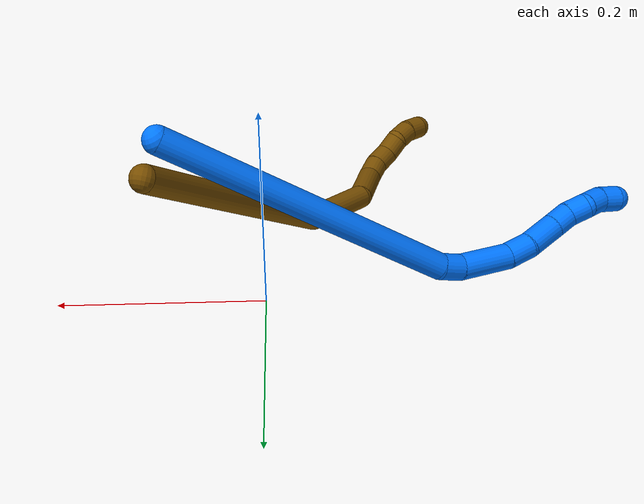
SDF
<sdf version="1.7">
 <world name="default">
  <model name="12">
   <static>0</static>
   <link name="12">
    <collision name="collision-cylinder-e_1_1_4">
     <pose>-0.071664 -0.110942 0.015609 1.43102 -0.569071 -0.497861</pose>
     <geometry><cylinder><radius>0.0125</radius><length>0.26599</length></cylinder></geometry>
     <surface>
      <friction><ode><mu>1.16</mu><mu2>1.16</mu2><slip1>0</slip1><slip2>0</slip2></ode></friction>
      <contact><ode><kp>1e+06</kp><kd>1</kd><max_vel>0</max_vel><min_depth>0.001</min_depth></ode></contact>
     </surface>
    </collision>
    <visual name="visual-cylinder-e_1_1_4">
     <pose>-0.071664 -0.110942 0.015609 1.43102 -0.569071 -0.497861</pose>
     <geometry><cylinder><radius>0.0125</radius><length>0.26599</length></cylinder></geometry>
     <material><ambient>0.466667 0.301961 0 1</ambient></material>
    </visual>
    <collision name="collision-cylinder-e_2_4_5">
     <pose>-0.166597 -0.24474 0.051513 0.844661 -0.650677 -0.300878</pose>
     <geometry><cylinder><radius>0.0125</radius><length>0.076828</length></cylinder></geometry>
     <surface>
      <friction><ode><mu>1.16</mu><mu2>1.16</mu2><slip1>0</slip1><slip2>0</slip2></ode></friction>
      <contact><ode><kp>1e+06</kp><kd>1</kd><max_vel>0</max_vel><min_depth>0.001</min_depth></ode></contact>
     </surface>
    </collision>
    <visual name="visual-cylinder-e_2_4_5">
     <pose>-0.166597 -0.24474 0.051513 0.844661 -0.650677 -0.300878</pose>
     <geometry><cylinder><radius>0.0125</radius><length>0.076828</length></cylinder></geometry>
     <material><ambient>0.466667 0.301961 0 1</ambient></material>
    </visual>
    <collision name="collision-cylinder-e_3_5_6">
     <pose>-0.193834 -0.287963 0.087902 0.902067 -0.151697 -0.07358</pose>
     <geometry><cylinder><radius>0.0125</radius><length>0.052524</length></cylinder></geometry>
     <surface>
      <friction><ode><mu>1.16</mu><mu2>1.16</mu2><slip1>0</slip1><slip2>0</slip2></ode></friction>
      <contact><ode><kp>1e+06</kp><kd>1</kd><max_vel>0</max_vel><min_depth>0.001</min_depth></ode></contact>
     </surface>
    </collision>
    <visual name="visual-cylinder-e_3_5_6">
     <pose>-0.193834 -0.287963 0.087902 0.902067 -0.151697 -0.07358</pose>
     <geometry><cylinder><radius>0.0125</radius><length>0.052524</length></cylinder></geometry>
     <material><ambient>0.466667 0.301961 0 1</ambient></material>
    </visual>
    <collision name="collision-cylinder-e_4_6_7">
     <pose>-0.200478 -0.313514 0.112875 0.528325 -0.254673 -0.069232</pose>
     <geometry><cylinder><radius>0.0125</radius><length>0.021244</length></cylinder></geometry>
     <surface>
      <friction><ode><mu>1.16</mu><mu2>1.16</mu2><slip1>0</slip1><slip2>0</slip2></ode></friction>
      <contact><ode><kp>1e+06</kp><kd>1</kd><max_vel>0</max_vel><min_depth>0.001</min_depth></ode></contact>
     </surface>
    </collision>
    <visual name="visual-cylinder-e_4_6_7">
     <pose>-0.200478 -0.313514 0.112875 0.528325 -0.254673 -0.069232</pose>
     <geometry><cylinder><radius>0.0125</radius><length>0.021244</length></cylinder></geometry>
     <material><ambient>0.466667 0.301961 0 1</ambient></material>
    </visual>
    <collision name="collision-cylinder-e_5_7_8">
     <pose>-0.208412 -0.323421 0.130488 0.495854 -0.486913 -0.125584</pose>
     <geometry><cylinder><radius>0.0125</radius><length>0.022476</length></cylinder></geometry>
     <surface>
      <friction><ode><mu>1.16</mu><mu2>1.16</mu2><slip1>0</slip1><slip2>0</slip2></ode></friction>
      <contact><ode><kp>1e+06</kp><kd>1</kd><max_vel>0</max_vel><min_depth>0.001</min_depth></ode></contact>
     </surface>
    </collision>
    <visual name="visual-cylinder-e_5_7_8">
     <pose>-0.208412 -0.323421 0.130488 0.495854 -0.486913 -0.125584</pose>
     <geometry><cylinder><radius>0.0125</radius><length>0.022476</length></cylinder></geometry>
     <material><ambient>0.466667 0.301961 0 1</ambient></material>
    </visual>
    <collision name="collision-cylinder-e_6_8_9">
     <pose>-0.217978 -0.328312 0.148362 0.01821 -0.440469 -0.004077</pose>
     <geometry><cylinder><radius>0.0125</radius><length>0.020207</length></cylinder></geometry>
     <surface>
      <friction><ode><mu>1.16</mu><mu2>1.16</mu2><slip1>0</slip1><slip2>0</slip2></ode></friction>
      <contact><ode><kp>1e+06</kp><kd>1</kd><max_vel>0</max_vel><min_depth>0.001</min_depth></ode></contact>
     </surface>
    </collision>
    <visual name="visual-cylinder-e_6_8_9">
     <pose>-0.217978 -0.328312 0.148362 0.01821 -0.440469 -0.004077</pose>
     <geometry><cylinder><radius>0.0125</radius><length>0.020207</length></cylinder></geometry>
     <material><ambient>0.466667 0.301961 0 1</ambient></material>
    </visual>
    <collision name="collision-cylinder-e_7_9_10">
     <pose>-0.227401 -0.333256 0.165055 0.563834 -0.519707 -0.153702</pose>
     <geometry><cylinder><radius>0.0125</radius><length>0.020599</length></cylinder></geometry>
     <surface>
      <friction><ode><mu>1.16</mu><mu2>1.16</mu2><slip1>0</slip1><slip2>0</slip2></ode></friction>
      <contact><ode><kp>1e+06</kp><kd>1</kd><max_vel>0</max_vel><min_depth>0.001</min_depth></ode></contact>
     </surface>
    </collision>
    <visual name="visual-cylinder-e_7_9_10">
     <pose>-0.227401 -0.333256 0.165055 0.563834 -0.519707 -0.153702</pose>
     <geometry><cylinder><radius>0.0125</radius><length>0.020599</length></cylinder></geometry>
     <material><ambient>0.466667 0.301961 0 1</ambient></material>
    </visual>
    <collision name="collision-cylinder-e_8_10_2">
     <pose>-0.239083 -0.343586 0.177845 0.814852 -0.710638 -0.31759</pose>
     <geometry><cylinder><radius>0.0125</radius><length>0.020134</length></cylinder></geometry>
     <surface>
      <friction><ode><mu>1.16</mu><mu2>1.16</mu2><slip1>0</slip1><slip2>0</slip2></ode></friction>
      <contact><ode><kp>1e+06</kp><kd>1</kd><max_vel>0</max_vel><min_depth>0.001</min_depth></ode></contact>
     </surface>
    </collision>
    <visual name="visual-cylinder-e_8_10_2">
     <pose>-0.239083 -0.343586 0.177845 0.814852 -0.710638 -0.31759</pose>
     <geometry><cylinder><radius>0.0125</radius><length>0.020134</length></cylinder></geometry>
     <material><ambient>0.466667 0.301961 0 1</ambient></material>
    </visual>
    <collision name="collision-sphere-2">
     <pose>-0.24565 -0.349138 0.183079 0 -0 0</pose>
     <geometry><sphere><radius>0.0125</radius></sphere></geometry>
     <surface>
      <friction><ode><mu>1.16</mu><mu2>1.16</mu2><slip1>0</slip1><slip2>0</slip2></ode></friction>
      <contact><ode><kp>1e+06</kp><kd>1</kd><max_vel>0</max_vel><min_depth>0.001</min_depth></ode></contact>
     </surface>
    </collision>
    <visual name="visual-sphere-2">
     <pose>-0.24565 -0.349138 0.183079 0 -0 0</pose>
     <geometry><sphere><radius>0.0125</radius></sphere></geometry>
     <material><ambient>0.466667 0.301961 0 1</ambient></material>
    </visual>
    <collision name="collision-sphere-10">
     <pose>-0.232516 -0.338034 0.172611 0 -0 0</pose>
     <geometry><sphere><radius>0.0125</radius></sphere></geometry>
     <surface>
      <friction><ode><mu>1.16</mu><mu2>1.16</mu2><slip1>0</slip1><slip2>0</slip2></ode></friction>
      <contact><ode><kp>1e+06</kp><kd>1</kd><max_vel>0</max_vel><min_depth>0.001</min_depth></ode></contact>
     </surface>
    </collision>
    <visual name="visual-sphere-10">
     <pose>-0.232516 -0.338034 0.172611 0 -0 0</pose>
     <geometry><sphere><radius>0.0125</radius></sphere></geometry>
     <material><ambient>0.466667 0.301961 0 1</ambient></material>
    </visual>
    <collision name="collision-sphere-9">
     <pose>-0.222286 -0.328479 0.157499 0 -0 0</pose>
     <geometry><sphere><radius>0.0125</radius></sphere></geometry>
     <surface>
      <friction><ode><mu>1.16</mu><mu2>1.16</mu2><slip1>0</slip1><slip2>0</slip2></ode></friction>
      <contact><ode><kp>1e+06</kp><kd>1</kd><max_vel>0</max_vel><min_depth>0.001</min_depth></ode></contact>
     </surface>
    </collision>
    <visual name="visual-sphere-9">
     <pose>-0.222286 -0.328479 0.157499 0 -0 0</pose>
     <geometry><sphere><radius>0.0125</radius></sphere></geometry>
     <material><ambient>0.466667 0.301961 0 1</ambient></material>
    </visual>
    <collision name="collision-sphere-4">
     <pose>-0.143329 -0.221885 0.031218 0 -0 0</pose>
     <geometry><sphere><radius>0.0125</radius></sphere></geometry>
     <surface>
      <friction><ode><mu>1.16</mu><mu2>1.16</mu2><slip1>0</slip1><slip2>0</slip2></ode></friction>
      <contact><ode><kp>1e+06</kp><kd>1</kd><max_vel>0</max_vel><min_depth>0.001</min_depth></ode></contact>
     </surface>
    </collision>
    <visual name="visual-sphere-4">
     <pose>-0.143329 -0.221885 0.031218 0 -0 0</pose>
     <geometry><sphere><radius>0.0125</radius></sphere></geometry>
     <material><ambient>0.466667 0.301961 0 1</ambient></material>
    </visual>
    <collision name="collision-sphere-1">
     <geometry><sphere><radius>0.0125</radius></sphere></geometry>
     <surface>
      <friction><ode><mu>1.16</mu><mu2>1.16</mu2><slip1>0</slip1><slip2>0</slip2></ode></friction>
      <contact><ode><kp>1e+06</kp><kd>1</kd><max_vel>0</max_vel><min_depth>0.001</min_depth></ode></contact>
     </surface>
    </collision>
    <visual name="visual-sphere-1">
     <geometry><sphere><radius>0.0125</radius></sphere></geometry>
     <material><ambient>0.466667 0.301961 0 1</ambient></material>
    </visual>
    <collision name="collision-sphere-8">
     <pose>-0.213671 -0.328146 0.139224 0 -0 0</pose>
     <geometry><sphere><radius>0.0125</radius></sphere></geometry>
     <surface>
      <friction><ode><mu>1.16</mu><mu2>1.16</mu2><slip1>0</slip1><slip2>0</slip2></ode></friction>
      <contact><ode><kp>1e+06</kp><kd>1</kd><max_vel>0</max_vel><min_depth>0.001</min_depth></ode></contact>
     </surface>
    </collision>
    <visual name="visual-sphere-8">
     <pose>-0.213671 -0.328146 0.139224 0 -0 0</pose>
     <geometry><sphere><radius>0.0125</radius></sphere></geometry>
     <material><ambient>0.466667 0.301961 0 1</ambient></material>
    </visual>
    <collision name="collision-sphere-5">
     <pose>-0.189865 -0.267595 0.071807 0 -0 0</pose>
     <geometry><sphere><radius>0.0125</radius></sphere></geometry>
     <surface>
      <friction><ode><mu>1.16</mu><mu2>1.16</mu2><slip1>0</slip1><slip2>0</slip2></ode></friction>
      <contact><ode><kp>1e+06</kp><kd>1</kd><max_vel>0</max_vel><min_depth>0.001</min_depth></ode></contact>
     </surface>
    </collision>
    <visual name="visual-sphere-5">
     <pose>-0.189865 -0.267595 0.071807 0 -0 0</pose>
     <geometry><sphere><radius>0.0125</radius></sphere></geometry>
     <material><ambient>0.466667 0.301961 0 1</ambient></material>
    </visual>
    <collision name="collision-sphere-6">
     <pose>-0.197802 -0.308332 0.103997 0 -0 0</pose>
     <geometry><sphere><radius>0.0125</radius></sphere></geometry>
     <surface>
      <friction><ode><mu>1.16</mu><mu2>1.16</mu2><slip1>0</slip1><slip2>0</slip2></ode></friction>
      <contact><ode><kp>1e+06</kp><kd>1</kd><max_vel>0</max_vel><min_depth>0.001</min_depth></ode></contact>
     </surface>
    </collision>
    <visual name="visual-sphere-6">
     <pose>-0.197802 -0.308332 0.103997 0 -0 0</pose>
     <geometry><sphere><radius>0.0125</radius></sphere></geometry>
     <material><ambient>0.466667 0.301961 0 1</ambient></material>
    </visual>
    <collision name="collision-sphere-7">
     <pose>-0.203154 -0.318695 0.121753 0 -0 0</pose>
     <geometry><sphere><radius>0.0125</radius></sphere></geometry>
     <surface>
      <friction><ode><mu>1.16</mu><mu2>1.16</mu2><slip1>0</slip1><slip2>0</slip2></ode></friction>
      <contact><ode><kp>1e+06</kp><kd>1</kd><max_vel>0</max_vel><min_depth>0.001</min_depth></ode></contact>
     </surface>
    </collision>
    <visual name="visual-sphere-7">
     <pose>-0.203154 -0.318695 0.121753 0 -0 0</pose>
     <geometry><sphere><radius>0.0125</radius></sphere></geometry>
     <material><ambient>0.466667 0.301961 0 1</ambient></material>
    </visual>
    <inertial>
     <pose>-0.129775 -0.195566 0.056071 0 -0 0</pose>
     <mass>0.5</mass>
     <inertia>
      <ixx>0.000554</ixx>
      <ixy>0</ixy>
      <ixz>0</ixz>
      <iyy>-3.1e-05</iyy>
      <iyz>0</iyz>
      <izz>0.002251</izz>
     </inertia>
    </inertial>
   </link>
   <pose>0.093241 0.063992 0.173623 0.722542 -0.175477 -0.126428</pose>
  </model>
  <model name="14">
   <static>0</static>
   <link name="14">
    <collision name="collision-cylinder-e_1_1_4">
     <pose>-0.076069 -0.012527 -0.120959 3.03839 -0.558984 -2.78551</pose>
     <geometry><cylinder><radius>0.0125</radius><length>0.286876</length></cylinder></geometry>
     <surface>
      <friction><ode><mu>1.16</mu><mu2>1.16</mu2><slip1>0</slip1><slip2>0</slip2></ode></friction>
      <contact><ode><kp>1e+06</kp><kd>1</kd><max_vel>0</max_vel><min_depth>0.001</min_depth></ode></contact>
     </surface>
    </collision>
    <visual name="visual-cylinder-e_1_1_4">
     <pose>-0.076069 -0.012527 -0.120959 3.03839 -0.558984 -2.78551</pose>
     <geometry><cylinder><radius>0.0125</radius><length>0.286876</length></cylinder></geometry>
     <material><ambient>0 0.462745 1 1</ambient></material>
    </visual>
    <collision name="collision-cylinder-e_2_4_5">
     <pose>-0.15994 -0.028255 -0.249188 2.72686 -0.776452 -2.19135</pose>
     <geometry><cylinder><radius>0.0125</radius><length>0.02227</length></cylinder></geometry>
     <surface>
      <friction><ode><mu>1.16</mu><mu2>1.16</mu2><slip1>0</slip1><slip2>0</slip2></ode></friction>
      <contact><ode><kp>1e+06</kp><kd>1</kd><max_vel>0</max_vel><min_depth>0.001</min_depth></ode></contact>
     </surface>
    </collision>
    <visual name="visual-cylinder-e_2_4_5">
     <pose>-0.15994 -0.028255 -0.249188 2.72686 -0.776452 -2.19135</pose>
     <geometry><cylinder><radius>0.0125</radius><length>0.02227</length></cylinder></geometry>
     <material><ambient>0 0.462745 1 1</ambient></material>
    </visual>
    <collision name="collision-cylinder-e_3_5_6">
     <pose>-0.189628 -0.03929 -0.267567 2.52736 -1.01502 -2.10497</pose>
     <geometry><cylinder><radius>0.0125</radius><length>0.051525</length></cylinder></geometry>
     <surface>
      <friction><ode><mu>1.16</mu><mu2>1.16</mu2><slip1>0</slip1><slip2>0</slip2></ode></friction>
      <contact><ode><kp>1e+06</kp><kd>1</kd><max_vel>0</max_vel><min_depth>0.001</min_depth></ode></contact>
     </surface>
    </collision>
    <visual name="visual-cylinder-e_3_5_6">
     <pose>-0.189628 -0.03929 -0.267567 2.52736 -1.01502 -2.10497</pose>
     <geometry><cylinder><radius>0.0125</radius><length>0.051525</length></cylinder></geometry>
     <material><ambient>0 0.462745 1 1</ambient></material>
    </visual>
    <collision name="collision-cylinder-e_4_6_7">
     <pose>-0.223158 -0.051368 -0.281134 2.0959 -1.1721 -1.71166</pose>
     <geometry><cylinder><radius>0.0125</radius><length>0.025271</length></cylinder></geometry>
     <surface>
      <friction><ode><mu>1.16</mu><mu2>1.16</mu2><slip1>0</slip1><slip2>0</slip2></ode></friction>
      <contact><ode><kp>1e+06</kp><kd>1</kd><max_vel>0</max_vel><min_depth>0.001</min_depth></ode></contact>
     </surface>
    </collision>
    <visual name="visual-cylinder-e_4_6_7">
     <pose>-0.223158 -0.051368 -0.281134 2.0959 -1.1721 -1.71166</pose>
     <geometry><cylinder><radius>0.0125</radius><length>0.025271</length></cylinder></geometry>
     <material><ambient>0 0.462745 1 1</ambient></material>
    </visual>
    <collision name="collision-cylinder-e_5_7_8">
     <pose>-0.249156 -0.064234 -0.285551 1.79415 -1.01875 -1.22096</pose>
     <geometry><cylinder><radius>0.0125</radius><length>0.033716</length></cylinder></geometry>
     <surface>
      <friction><ode><mu>1.16</mu><mu2>1.16</mu2><slip1>0</slip1><slip2>0</slip2></ode></friction>
      <contact><ode><kp>1e+06</kp><kd>1</kd><max_vel>0</max_vel><min_depth>0.001</min_depth></ode></contact>
     </surface>
    </collision>
    <visual name="visual-cylinder-e_5_7_8">
     <pose>-0.249156 -0.064234 -0.285551 1.79415 -1.01875 -1.22096</pose>
     <geometry><cylinder><radius>0.0125</radius><length>0.033716</length></cylinder></geometry>
     <material><ambient>0 0.462745 1 1</ambient></material>
    </visual>
    <collision name="collision-cylinder-e_6_8_9">
     <pose>-0.272584 -0.077394 -0.287972 1.67246 -1.10497 -1.19794</pose>
     <geometry><cylinder><radius>0.0125</radius><length>0.020312</length></cylinder></geometry>
     <surface>
      <friction><ode><mu>1.16</mu><mu2>1.16</mu2><slip1>0</slip1><slip2>0</slip2></ode></friction>
      <contact><ode><kp>1e+06</kp><kd>1</kd><max_vel>0</max_vel><min_depth>0.001</min_depth></ode></contact>
     </surface>
    </collision>
    <visual name="visual-cylinder-e_6_8_9">
     <pose>-0.272584 -0.077394 -0.287972 1.67246 -1.10497 -1.19794</pose>
     <geometry><cylinder><radius>0.0125</radius><length>0.020312</length></cylinder></geometry>
     <material><ambient>0 0.462745 1 1</ambient></material>
    </visual>
    <collision name="collision-cylinder-e_7_9_10">
     <pose>-0.291397 -0.08385 -0.289693 2.15109 -1.33947 -1.94428</pose>
     <geometry><cylinder><radius>0.0125</radius><length>0.020011</length></cylinder></geometry>
     <surface>
      <friction><ode><mu>1.16</mu><mu2>1.16</mu2><slip1>0</slip1><slip2>0</slip2></ode></friction>
      <contact><ode><kp>1e+06</kp><kd>1</kd><max_vel>0</max_vel><min_depth>0.001</min_depth></ode></contact>
     </surface>
    </collision>
    <visual name="visual-cylinder-e_7_9_10">
     <pose>-0.291397 -0.08385 -0.289693 2.15109 -1.33947 -1.94428</pose>
     <geometry><cylinder><radius>0.0125</radius><length>0.020011</length></cylinder></geometry>
     <material><ambient>0 0.462745 1 1</ambient></material>
    </visual>
    <collision name="collision-cylinder-e_8_10_11">
     <pose>-0.308627 -0.091306 -0.29459 2.15227 -0.846574 -1.39172</pose>
     <geometry><cylinder><radius>0.0125</radius><length>0.020004</length></cylinder></geometry>
     <surface>
      <friction><ode><mu>1.16</mu><mu2>1.16</mu2><slip1>0</slip1><slip2>0</slip2></ode></friction>
      <contact><ode><kp>1e+06</kp><kd>1</kd><max_vel>0</max_vel><min_depth>0.001</min_depth></ode></contact>
     </surface>
    </collision>
    <visual name="visual-cylinder-e_8_10_11">
     <pose>-0.308627 -0.091306 -0.29459 2.15227 -0.846574 -1.39172</pose>
     <geometry><cylinder><radius>0.0125</radius><length>0.020004</length></cylinder></geometry>
     <material><ambient>0 0.462745 1 1</ambient></material>
    </visual>
    <collision name="collision-cylinder-e_9_11_2">
     <pose>-0.32413 -0.099398 -0.303657 2.70173 -0.928108 -2.30148</pose>
     <geometry><cylinder><radius>0.0125</radius><length>0.020015</length></cylinder></geometry>
     <surface>
      <friction><ode><mu>1.16</mu><mu2>1.16</mu2><slip1>0</slip1><slip2>0</slip2></ode></friction>
      <contact><ode><kp>1e+06</kp><kd>1</kd><max_vel>0</max_vel><min_depth>0.001</min_depth></ode></contact>
     </surface>
    </collision>
    <visual name="visual-cylinder-e_9_11_2">
     <pose>-0.32413 -0.099398 -0.303657 2.70173 -0.928108 -2.30148</pose>
     <geometry><cylinder><radius>0.0125</radius><length>0.020015</length></cylinder></geometry>
     <material><ambient>0 0.462745 1 1</ambient></material>
    </visual>
    <collision name="collision-sphere-2">
     <pose>-0.33214 -0.101952 -0.309084 0 -0 0</pose>
     <geometry><sphere><radius>0.0125</radius></sphere></geometry>
     <surface>
      <friction><ode><mu>1.16</mu><mu2>1.16</mu2><slip1>0</slip1><slip2>0</slip2></ode></friction>
      <contact><ode><kp>1e+06</kp><kd>1</kd><max_vel>0</max_vel><min_depth>0.001</min_depth></ode></contact>
     </surface>
    </collision>
    <visual name="visual-sphere-2">
     <pose>-0.33214 -0.101952 -0.309084 0 -0 0</pose>
     <geometry><sphere><radius>0.0125</radius></sphere></geometry>
     <material><ambient>0 0.462745 1 1</ambient></material>
    </visual>
    <collision name="collision-sphere-11">
     <pose>-0.316119 -0.096844 -0.29823 0 -0 0</pose>
     <geometry><sphere><radius>0.0125</radius></sphere></geometry>
     <surface>
      <friction><ode><mu>1.16</mu><mu2>1.16</mu2><slip1>0</slip1><slip2>0</slip2></ode></friction>
      <contact><ode><kp>1e+06</kp><kd>1</kd><max_vel>0</max_vel><min_depth>0.001</min_depth></ode></contact>
     </surface>
    </collision>
    <visual name="visual-sphere-11">
     <pose>-0.316119 -0.096844 -0.29823 0 -0 0</pose>
     <geometry><sphere><radius>0.0125</radius></sphere></geometry>
     <material><ambient>0 0.462745 1 1</ambient></material>
    </visual>
    <collision name="collision-sphere-10">
     <pose>-0.301136 -0.085769 -0.290951 0 -0 0</pose>
     <geometry><sphere><radius>0.0125</radius></sphere></geometry>
     <surface>
      <friction><ode><mu>1.16</mu><mu2>1.16</mu2><slip1>0</slip1><slip2>0</slip2></ode></friction>
      <contact><ode><kp>1e+06</kp><kd>1</kd><max_vel>0</max_vel><min_depth>0.001</min_depth></ode></contact>
     </surface>
    </collision>
    <visual name="visual-sphere-10">
     <pose>-0.301136 -0.085769 -0.290951 0 -0 0</pose>
     <geometry><sphere><radius>0.0125</radius></sphere></geometry>
     <material><ambient>0 0.462745 1 1</ambient></material>
    </visual>
    <collision name="collision-sphere-9">
     <pose>-0.281658 -0.081932 -0.288435 0 -0 0</pose>
     <geometry><sphere><radius>0.0125</radius></sphere></geometry>
     <surface>
      <friction><ode><mu>1.16</mu><mu2>1.16</mu2><slip1>0</slip1><slip2>0</slip2></ode></friction>
      <contact><ode><kp>1e+06</kp><kd>1</kd><max_vel>0</max_vel><min_depth>0.001</min_depth></ode></contact>
     </surface>
    </collision>
    <visual name="visual-sphere-9">
     <pose>-0.281658 -0.081932 -0.288435 0 -0 0</pose>
     <geometry><sphere><radius>0.0125</radius></sphere></geometry>
     <material><ambient>0 0.462745 1 1</ambient></material>
    </visual>
    <collision name="collision-sphere-4">
     <pose>-0.152138 -0.025055 -0.241918 0 -0 0</pose>
     <geometry><sphere><radius>0.0125</radius></sphere></geometry>
     <surface>
      <friction><ode><mu>1.16</mu><mu2>1.16</mu2><slip1>0</slip1><slip2>0</slip2></ode></friction>
      <contact><ode><kp>1e+06</kp><kd>1</kd><max_vel>0</max_vel><min_depth>0.001</min_depth></ode></contact>
     </surface>
    </collision>
    <visual name="visual-sphere-4">
     <pose>-0.152138 -0.025055 -0.241918 0 -0 0</pose>
     <geometry><sphere><radius>0.0125</radius></sphere></geometry>
     <material><ambient>0 0.462745 1 1</ambient></material>
    </visual>
    <collision name="collision-sphere-1">
     <geometry><sphere><radius>0.0125</radius></sphere></geometry>
     <surface>
      <friction><ode><mu>1.16</mu><mu2>1.16</mu2><slip1>0</slip1><slip2>0</slip2></ode></friction>
      <contact><ode><kp>1e+06</kp><kd>1</kd><max_vel>0</max_vel><min_depth>0.001</min_depth></ode></contact>
     </surface>
    </collision>
    <visual name="visual-sphere-1">
     <geometry><sphere><radius>0.0125</radius></sphere></geometry>
     <material><ambient>0 0.462745 1 1</ambient></material>
    </visual>
    <collision name="collision-sphere-8">
     <pose>-0.26351 -0.072856 -0.287509 0 -0 0</pose>
     <geometry><sphere><radius>0.0125</radius></sphere></geometry>
     <surface>
      <friction><ode><mu>1.16</mu><mu2>1.16</mu2><slip1>0</slip1><slip2>0</slip2></ode></friction>
      <contact><ode><kp>1e+06</kp><kd>1</kd><max_vel>0</max_vel><min_depth>0.001</min_depth></ode></contact>
     </surface>
    </collision>
    <visual name="visual-sphere-8">
     <pose>-0.26351 -0.072856 -0.287509 0 -0 0</pose>
     <geometry><sphere><radius>0.0125</radius></sphere></geometry>
     <material><ambient>0 0.462745 1 1</ambient></material>
    </visual>
    <collision name="collision-sphere-5">
     <pose>-0.167743 -0.031456 -0.256459 0 -0 0</pose>
     <geometry><sphere><radius>0.0125</radius></sphere></geometry>
     <surface>
      <friction><ode><mu>1.16</mu><mu2>1.16</mu2><slip1>0</slip1><slip2>0</slip2></ode></friction>
      <contact><ode><kp>1e+06</kp><kd>1</kd><max_vel>0</max_vel><min_depth>0.001</min_depth></ode></contact>
     </surface>
    </collision>
    <visual name="visual-sphere-5">
     <pose>-0.167743 -0.031456 -0.256459 0 -0 0</pose>
     <geometry><sphere><radius>0.0125</radius></sphere></geometry>
     <material><ambient>0 0.462745 1 1</ambient></material>
    </visual>
    <collision name="collision-sphere-6">
     <pose>-0.211513 -0.047124 -0.278675 0 -0 0</pose>
     <geometry><sphere><radius>0.0125</radius></sphere></geometry>
     <surface>
      <friction><ode><mu>1.16</mu><mu2>1.16</mu2><slip1>0</slip1><slip2>0</slip2></ode></friction>
      <contact><ode><kp>1e+06</kp><kd>1</kd><max_vel>0</max_vel><min_depth>0.001</min_depth></ode></contact>
     </surface>
    </collision>
    <visual name="visual-sphere-6">
     <pose>-0.211513 -0.047124 -0.278675 0 -0 0</pose>
     <geometry><sphere><radius>0.0125</radius></sphere></geometry>
     <material><ambient>0 0.462745 1 1</ambient></material>
    </visual>
    <collision name="collision-sphere-7">
     <pose>-0.234802 -0.055613 -0.283593 0 -0 0</pose>
     <geometry><sphere><radius>0.0125</radius></sphere></geometry>
     <surface>
      <friction><ode><mu>1.16</mu><mu2>1.16</mu2><slip1>0</slip1><slip2>0</slip2></ode></friction>
      <contact><ode><kp>1e+06</kp><kd>1</kd><max_vel>0</max_vel><min_depth>0.001</min_depth></ode></contact>
     </surface>
    </collision>
    <visual name="visual-sphere-7">
     <pose>-0.234802 -0.055613 -0.283593 0 -0 0</pose>
     <geometry><sphere><radius>0.0125</radius></sphere></geometry>
     <material><ambient>0 0.462745 1 1</ambient></material>
    </visual>
    <inertial>
     <pose>-0.146448 -0.033554 -0.18877 0 -0 0</pose>
     <mass>0.5</mass>
     <inertia>
      <ixx>-0.0022</ixx>
      <ixy>0</ixy>
      <ixz>0</ixz>
      <iyy>0.001299</iyy>
      <iyz>0</iyz>
      <izz>0.001231</izz>
     </inertia>
    </inertial>
   </link>
   <pose>0.079527 0.062114 0.207669 0.061205 0.452748 0.094038</pose>
  </model>
 </world>
</sdf>
